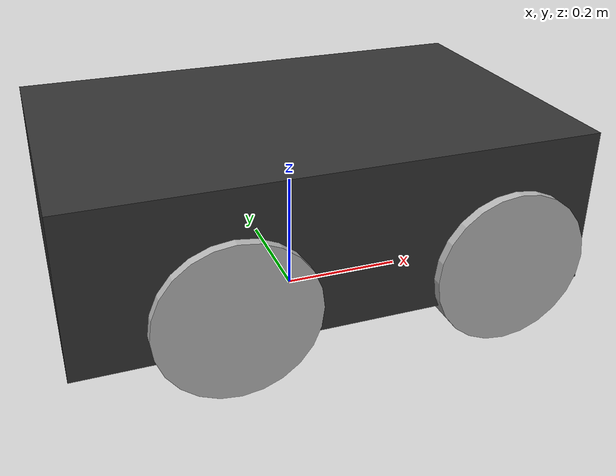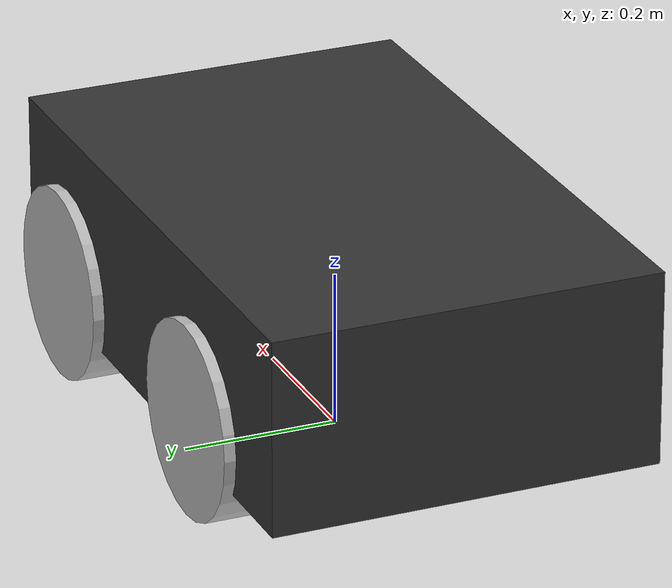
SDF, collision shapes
<?xml version="1.0" ?>
<sdf version="1.6">
  <model name="cs_rover">
    <static>false</static>

    <!-- 主体底盘 link -->
    <link name="base_link">
      <pose>0 0 0.20 0 0 0</pose>
      <inertial>
        <mass>10</mass>
        <inertia>
          <ixx>0.2604</ixx><iyy>0.5854</iyy><izz>0.7417</izz>
          <ixy>0</ixy><ixz>0</ixz><iyz>0</iyz>
        </inertia>
      </inertial>
      <visual name="base_visual">
        <geometry>
          <mesh>
            <uri>model://cs_rover_charge/meshes/body.dae</uri>
            <!-- 可选缩放比例（如需调整大小） -->
            <scale>1 1 1</scale>
          </mesh>
        </geometry>
        <material>
          <ambient>0.1 0.1 0.1 1</ambient>      <!-- 环境光，较亮 -->
          <diffuse>0.2 0.2 0.2 1</diffuse>      <!-- 主颜色，浅灰，接近碳纤维但不太深 -->
          <specular>0.4 0.4 0.4 1</specular>    <!-- 高光，增强金属质感 -->
          <emissive>0 0 0 1</emissive>          <!-- 无自发光 -->
        </material>
      </visual>
      <collision name="base_collision">
        <pose>0 0 0 0 0 0</pose>
        <geometry>
          <box><size>0.8 0.5 0.25</size></box>
        </geometry>
      </collision>
    </link>

<!-- imu -->
    <link name="imu_link">
      <inertial>
        <pose>0 0 0 0 0 0</pose>
        <mass>0.15</mass>
        <inertia>
          <ixx>0.00001</ixx>
          <ixy>0</ixy>
          <ixz>0</ixz>
          <iyy>0.00002</iyy>
          <iyz>0</iyz>
          <izz>0.00002</izz>
        </inertia>
      </inertial>
      <sensor name="imu_sensor" type="imu">
        <pose>0 0 0 3.141593 0 0</pose> <!-- Relative position of IMU on the link -->
        <always_on>1</always_on>
        <imu>
          <update_rate>1000.0</update_rate> <!-- IMU Update Rate -->
          <orientation_frame>body</orientation_frame> <!-- Orientation frame, can be 'world' or 'body' -->
          <noise>
            <angular_velocity>0.01</angular_velocity> <!-- Noise in rad/s -->
            <linear_acceleration>0.01</linear_acceleration> <!-- Noise in m/s² -->
          </noise>
        </imu>
      </sensor>
    </link>

    <joint name='imu_joint' type='revolute'>
      <child>imu_link</child>
      <parent>base_link</parent>
      <axis>
        <xyz>0 0 1</xyz>
        <limit>
          <lower>0</lower>
          <upper>0</upper>
          <effort>0</effort>
          <velocity>0</velocity>
        </limit>
        <dynamics>
          <damping>1.0</damping>
        </dynamics>
        <use_parent_model_frame>1</use_parent_model_frame>
      </axis>
      <physics>
        <ode>
          <implicit_spring_damper>1</implicit_spring_damper>
        </ode>
      </physics>
    </joint>

    <!-- Camera -->
    <link name="camera_link">
      <pose> -0.3 0 .2 0 0 3.14</pose>
      <inertial>
        <mass>0.1</mass>
        <inertia>
          <ixx>.10</ixx>
          <iyy>.10</iyy>
          <izz>.30</izz>
        </inertia>
      </inertial>
      <collision name='collision'>
        <geometry>
          <box>
            <size>0.03 0.2 0.03</size>
          </box>
        </geometry>
      </collision>

      <visual name='visual'>
        <geometry>
          <box>
            <size>0.03 0.2 0.03</size>
          </box>
        </geometry>

        <material>
          <ambient>1 0 0 1</ambient>
          <diffuse>1 1 1 1</diffuse>
          <specular>0.1 0.1 0.1 1</specular>
          <emissive>0 0 0 0</emissive>
        </material>
      </visual>

      <!-- camera plugin -->
      <!-- refered to realsense rgb camera profile -->
      <sensor type="camera" name="camera1">
        <update_rate>10.0</update_rate>
        <camera name="head">
          <horizontal_fov>1.204</horizontal_fov>
          <image>
              <width>711</width>
              <height>400</height>
            <format>R8G8B8</format>
          </image>
          <clip>
            <near>0.02</near>
            <far>300</far>
          </clip>
          <noise>
            <type>gaussian</type>
            <!-- Noise is sampled independently per pixel on each frame.
                That pixel's noise value is added to each of its color
                channels, which at that point lie in the range [0,1]. -->
            <mean>0.0</mean>
            <stddev>0.02</stddev>
          </noise>
        </camera>
        <plugin name="camera_controller" filename="libgazebo_ros_camera.so">
          <alwaysOn>true</alwaysOn>
          <updateRate>0.0</updateRate>
          <cameraName>/camera/color</cameraName>
          <imageTopicName>image_raw</imageTopicName>
          <cameraInfoTopicName>camera_info</cameraInfoTopicName>
          <frameName>camera_link</frameName>
          <hackBaseline>0.07</hackBaseline>
          <distortionK1>0.0</distortionK1>
          <distortionK2>0.0</distortionK2>
          <distortionK3>0.0</distortionK3>
          <distortionT1>0.0</distortionT1>
          <distortionT2>0.0</distortionT2>
        </plugin>
      </sensor>
    </link>

    <joint name="camera_joint" type="fixed">
      <parent>base_link</parent>
      <child>camera_link</child>
      <axis>
        <xyz>0 0 2</xyz>
      </axis>
    </joint>

<!-- 两个轮子 -->
    <link name="wheel_r">
      <pose>-0.165 -0.225 0.125 0 0 0</pose>
      <inertial>
        <mass>0.5</mass>
        <inertia>
          <ixx>0.00222</ixx>
          <ixy>0</ixy>
          <ixz>0</ixz>
          <iyy>0.00391</iyy>
          <iyz>0</iyz>
          <izz>0.00222</izz>
        </inertia>
      </inertial>
      <collision name="collision">
        <geometry><cylinder><radius>0.125</radius><length>0.08</length></cylinder></geometry>
        <pose>0 0 0 0 1.571 1.571</pose>
        <surface>
          <contact>
            <ode>
              <kp>1e7</kp>
              <kd>1</kd>
            </ode>
          </contact>
          <friction>
            <ode>
              <mu>100000</mu>
              <mu2>10</mu2>
              <fdir1>1 0 0</fdir1>
              <slip1>0</slip1>
              <slip2>0</slip2>
            </ode>
          </friction>
        </surface>
      </collision>

      <visual name="visual">
          <geometry>
            <mesh>
              <uri>model://cs_rover_charge/meshes/lunzi.dae</uri>
              <scale>1 1 1</scale>
            </mesh>
          </geometry>
      </visual>
    </link>

    <joint name="joint_wheel_r" type="revolute">
      <parent>base_link</parent>
      <child>wheel_r</child>
      <axis>
        <xyz>0 1 0</xyz>
      </axis>
    </joint>

    <link name="wheel_l">
      <pose>-0.165 0.225 0.125 0 0 3.1416</pose>
      <inertial>
        <mass>0.5</mass>
        <inertia>
          <ixx>0.00222</ixx>
          <ixy>0</ixy>
          <ixz>0</ixz>
          <iyy>0.00391</iyy>
          <iyz>0</iyz>
          <izz>0.00222</izz>
        </inertia>
      </inertial>
      <collision name="collision">
        <geometry><cylinder><radius>0.125</radius><length>0.08</length></cylinder></geometry>
        <pose>0 0 0 0 1.571 1.571</pose>
        <surface>
          <contact>
            <ode>
              <kp>1e7</kp>
              <kd>1</kd>
            </ode>
          </contact>
          <friction>
            <ode>
              <mu>100000</mu>
              <mu2>10</mu2>
              <fdir1>1 0 0</fdir1>
              <slip1>0</slip1>
              <slip2>0</slip2>
            </ode>
          </friction>
        </surface>
      </collision>
      <visual name="visual">
          <geometry>
            <mesh>
              <uri>model://cs_rover_charge/meshes/lunzi.dae</uri>
              <scale>1 1 1</scale> <!-- 这里调整缩放 -->
            </mesh>
          </geometry>
      </visual>
    </link>

    <joint name="joint_wheel_l" type="revolute">
      <parent>base_link</parent>
      <child>wheel_l</child>
      <axis>
        <xyz>0 1 0</xyz>
      </axis>
    </joint>

    <link name="front_wheel_l">
      <pose>0.266 0.225 0.125 0 0 3.1415926</pose>
      <inertial>
        <mass>0.5</mass>
        <inertia>
          <ixx>0.00222</ixx>
          <ixy>0</ixy>
          <ixz>0</ixz>
          <iyy>0.00391</iyy>
          <iyz>0</iyz>
          <izz>0.00222</izz>
        </inertia>
      </inertial>
      <collision name="collision">
        <geometry>
          <cylinder>
            <radius>0.125</radius>
            <length>0.08</length>
          </cylinder>
        </geometry>
        <pose>0 0 0 0 1.571 1.571</pose>
        <surface>
          <contact>
            <ode>
              <kp>1e7</kp>
              <kd>1</kd>
            </ode>
          </contact>
          <friction>
            <ode>
              <mu>100000</mu>
              <mu2>10</mu2>
              <fdir1>1 0 0</fdir1>
              <slip1>0</slip1>
              <slip2>0</slip2>
            </ode>
          </friction>
        </surface>
      </collision>

      <visual name="visual">
          <geometry>
            <mesh>
              <uri>model://cs_rover_charge/meshes/lunzi.dae</uri>
              <scale>1 1 1</scale> <!-- 这里调整缩放 -->
            </mesh>
          </geometry>
      </visual>

    </link>

    <joint name="joint_front_wheel_l" type="revolute">
      <parent>base_link</parent>
      <child>front_wheel_l</child>
      <axis>
        <xyz>0 1 0</xyz>
      </axis>
    </joint>

    <!-- 右前隐形小轮 -->
    <link name="front_wheel_r">
      <pose>0.266 -0.225 0.125 0 0 0</pose>
      <inertial>
        <mass>0.5</mass>
        <inertia>
          <ixx>0.00222</ixx>
          <ixy>0</ixy>
          <ixz>0</ixz>
          <iyy>0.00391</iyy>
          <iyz>0</iyz>
          <izz>0.00222</izz>
        </inertia>
      </inertial>
      <collision name="collision">
        <geometry>
          <cylinder>
            <radius>0.125</radius>
            <length>0.08</length>
          </cylinder>
        </geometry>
        <pose>0 0 0 0 1.571 1.571</pose>
        <surface>
          <contact>
            <ode>
              <kp>1e7</kp>
              <kd>1</kd>
            </ode>
          </contact>
          <friction>
            <ode>
              <mu>100000</mu>
              <mu2>10</mu2>
              <fdir1>1 0 0</fdir1>
              <slip1>0</slip1>
              <slip2>0</slip2>
            </ode>
          </friction>
        </surface>
      </collision>

      <visual name="visual">
          <geometry>
            <mesh>
              <uri>model://cs_rover_charge/meshes/lunzi.dae</uri>
              <scale>1 1 1</scale>
            </mesh>
          </geometry>
      </visual>

    </link>

    <joint name="joint_front_wheel_r" type="revolute">
      <parent>base_link</parent>
      <child>front_wheel_r</child>
      <axis>
        <xyz>0 1 0</xyz>
      </axis>
    </joint>

<!-- ardupilot配置-->
    <plugin name="ardurover_plugin" filename="libArduPilotPlugin.so">
      <fdm_addr>127.0.0.1</fdm_addr>
      <fdm_port_in>9002</fdm_port_in>
      <fdm_port_out>9003</fdm_port_out>
      <imuName>imu_link::imu_sensor</imuName>
      <connectionTimeoutMaxCount>5</connectionTimeoutMaxCount>
      <modelXYZToAirplaneXForwardZDown>0 0 0 3.141593 0 0</modelXYZToAirplaneXForwardZDown>
      <gazeboXYZToNED>0 0 0 3.141593 0 0</gazeboXYZToNED>

      <control channel="0">
        <jointName>joint_wheel_l</jointName>
        <useForce>1</useForce>
        <multiplier>-50</multiplier>   <!-- PWM 转速度比例，可以调大/调小 -->
        <offset>-0.5</offset>
        <servo_min>1000</servo_min>
        <servo_max>2000</servo_max>
        <type>VELOCITY</type>
        <p_gain>1</p_gain>
        <i_gain>0</i_gain>
        <d_gain>0.0001</d_gain>
        <i_max>0</i_max>
        <i_min>0</i_min>
        <cmd_max>10.0</cmd_max>       <!-- 最大角速度 rad/s -->
        <cmd_min>-10.0</cmd_min>
      </control>

      <control channel="0">
        <jointName>joint_front_wheel_l</jointName>
        <useForce>1</useForce>
        <multiplier>-50</multiplier>   <!-- PWM 转速度比例，可以调大/调小 -->
        <offset>-0.5</offset>
        <servo_min>1000</servo_min>
        <servo_max>2000</servo_max>
        <type>VELOCITY</type>
        <p_gain>1</p_gain>
        <i_gain>0</i_gain>
        <d_gain>0.0001</d_gain>
        <i_max>0</i_max>
        <i_min>0</i_min>
        <cmd_max>10.0</cmd_max>       <!-- 最大角速度 rad/s -->
        <cmd_min>-10.0</cmd_min>
      </control>

      <!-- 右轮驱动 -->
      <control channel="2">
        <jointName>joint_wheel_r</jointName>
        <useForce>1</useForce>
        <multiplier>50</multiplier>
        <offset>-0.5</offset>
        <servo_min>1000</servo_min>
        <servo_max>2000</servo_max>
        <type>VELOCITY</type>
        <p_gain>1</p_gain>
        <i_gain>0</i_gain>
        <d_gain>0.0001</d_gain>
        <i_max>0</i_max>
        <i_min>0</i_min>
        <cmd_max>10.0</cmd_max>
        <cmd_min>-10.0</cmd_min>
      </control>

      <control channel="2">
        <jointName>joint_front_wheel_r</jointName>
        <useForce>1</useForce>
        <multiplier>50</multiplier>
        <offset>-0.5</offset>
        <servo_min>1000</servo_min>
        <servo_max>2000</servo_max>
        <type>VELOCITY</type>
        <p_gain>1</p_gain>
        <i_gain>0</i_gain>
        <d_gain>0.0001</d_gain>
        <i_max>0</i_max>
        <i_min>0</i_min>
        <cmd_max>10.0</cmd_max>
        <cmd_min>-10.0</cmd_min>
      </control>

    </plugin>

  </model>
</sdf>
